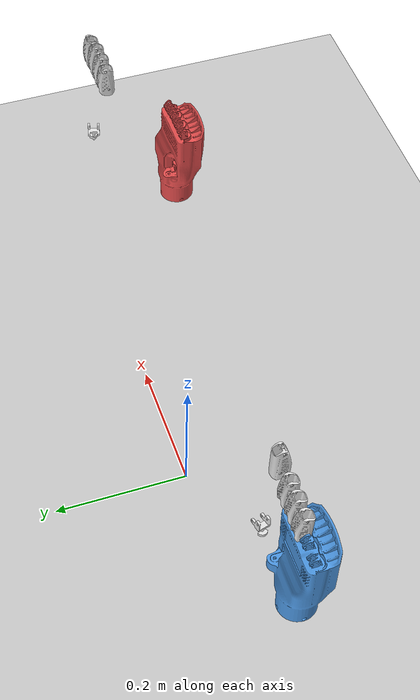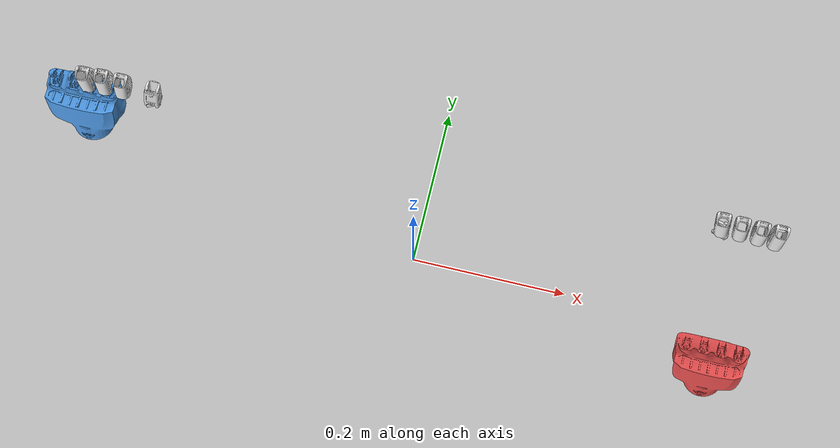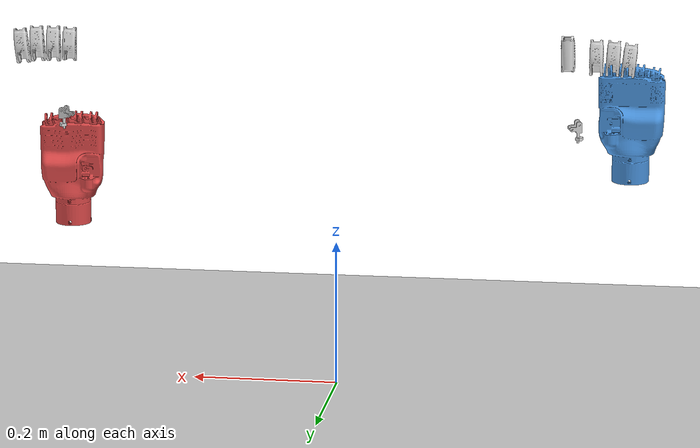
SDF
<?xml version="1.0" ?>
<sdf version="1.7">
  <world name="ftp_hands_simple">
    <!-- Physics settings -->
    <physics name="default" type="ode">
      <max_step_size>0.001</max_step_size>
      <real_time_factor>1.0</real_time_factor>
      <real_time_update_rate>1000</real_time_update_rate>
    </physics>

    <!-- Light sources -->
    <light type="directional" name="sun">
      <cast_shadows>true</cast_shadows>
      <pose>0 0 10 0 0 0</pose>
      <diffuse>0.8 0.8 0.8 1</diffuse>
      <specular>0.2 0.2 0.2 1</specular>
      <attenuation>
        <range>1000</range>
        <constant>0.9</constant>
        <linear>0.01</linear>
        <quadratic>0.001</quadratic>
      </attenuation>
      <direction>-0.5 0.1 -0.9</direction>
    </light>

    <!-- Additional light for better visibility -->
    <light type="point" name="point_light">
      <pose>0 0 2 0 0 0</pose>
      <diffuse>0.5 0.5 0.5 1</diffuse>
      <specular>0.1 0.1 0.1 1</specular>
      <attenuation>
        <range>50</range>
        <constant>0.5</constant>
        <linear>0.01</linear>
        <quadratic>0.001</quadratic>
      </attenuation>
    </light>

    <!-- Ground plane -->
    <model name="ground_plane">
      <static>true</static>
      <link name="link">
        <collision name="collision">
          <geometry>
            <plane>
              <normal>0 0 1</normal>
              <size>100 100</size>
            </plane>
          </geometry>
        </collision>
        <visual name="visual">
          <geometry>
            <plane>
              <normal>0 0 1</normal>
              <size>100 100</size>
            </plane>
          </geometry>
          <material>
            <ambient>0.8 0.8 0.8 1</ambient>
            <diffuse>0.8 0.8 0.8 1</diffuse>
            <specular>0.8 0.8 0.8 1</specular>
          </material>
        </visual>
      </link>
    </model>

    <!-- FTP Left Hand (Simplified) -->
    <model name="ftp_left_hand">
      <pose>-0.4 0 0.3 0 0 0</pose>
      <static>true</static>

      <!-- Left Base Link -->
      <link name="left_base">
        <pose>0 0 0 0 0 0</pose>
        <inertial>
          <mass>0.5</mass>
          <inertia>
            <ixx>0.001</ixx>
            <ixy>0</ixy>
            <ixz>0</ixz>
            <iyy>0.001</iyy>
            <iyz>0</iyz>
            <izz>0.001</izz>
          </inertia>
        </inertial>
        <visual name="visual">
          <geometry>
            <mesh>
              <uri>file://meshes/left_base_link.STL</uri>
              <scale>1 1 1</scale>
            </mesh>
          </geometry>
          <material>
            <ambient>0.2 0.5 0.8 1</ambient>
            <diffuse>0.3 0.6 0.9 1</diffuse>
            <specular>0.1 0.1 0.1 1</specular>
          </material>
        </visual>
        <collision name="collision">
          <geometry>
            <mesh>
              <uri>file://meshes/left_base_link.STL</uri>
            </mesh>
          </geometry>
        </collision>
      </link>

      <!-- Left Thumb -->
      <link name="left_thumb">
        <pose>0.07 0.02 0.07 0 0 0</pose>
        <inertial>
          <mass>0.01</mass>
          <inertia>
            <ixx>0.0001</ixx>
            <ixy>0</ixy>
            <ixz>0</ixz>
            <iyy>0.0001</iyy>
            <iyz>0</iyz>
            <izz>0.0001</izz>
          </inertia>
        </inertial>
        <visual name="visual">
          <geometry>
            <mesh>
              <uri>file://meshes/left_thumb_1.STL</uri>
            </mesh>
          </geometry>
          <material>
            <ambient>0.8 0.8 0.8 1</ambient>
            <diffuse>0.9 0.9 0.9 1</diffuse>
          </material>
        </visual>
        <collision name="collision">
          <geometry>
            <mesh>
              <uri>file://meshes/left_thumb_1.STL</uri>
            </mesh>
          </geometry>
        </collision>
      </link>

      <!-- Left Index Finger -->
      <link name="left_index">
        <pose>0.08 0 0.16 1.6 0 1.57</pose>
        <inertial>
          <mass>0.02</mass>
          <inertia>
            <ixx>0.0001</ixx>
            <ixy>0</ixy>
            <ixz>0</ixz>
            <iyy>0.0001</iyy>
            <iyz>0</iyz>
            <izz>0.0001</izz>
          </inertia>
        </inertial>
        <visual name="visual">
          <geometry>
            <mesh>
              <uri>file://meshes/left_index_1.STL</uri>
            </mesh>
          </geometry>
          <material>
            <ambient>0.8 0.8 0.8 1</ambient>
            <diffuse>0.9 0.9 0.9 1</diffuse>
          </material>
        </visual>
        <collision name="collision">
          <geometry>
            <mesh>
              <uri>file://meshes/left_index_1.STL</uri>
            </mesh>
          </geometry>
        </collision>
      </link>

      <!-- Left Middle Finger -->
      <link name="left_middle">
        <pose>0.056 0 0.157 1.57 0 1.57</pose>
        <inertial>
          <mass>0.02</mass>
          <inertia>
            <ixx>0.0001</ixx>
            <ixy>0</ixy>
            <ixz>0</ixz>
            <iyy>0.0001</iyy>
            <iyz>0</iyz>
            <izz>0.0001</izz>
          </inertia>
        </inertial>
        <visual name="visual">
          <geometry>
            <mesh>
              <uri>file://meshes/left_middle_1.STL</uri>
            </mesh>
          </geometry>
          <material>
            <ambient>0.8 0.8 0.8 1</ambient>
            <diffuse>0.9 0.9 0.9 1</diffuse>
          </material>
        </visual>
        <collision name="collision">
          <geometry>
            <mesh>
              <uri>file://meshes/left_middle_1.STL</uri>
            </mesh>
          </geometry>
        </collision>
      </link>

      <!-- Left Ring Finger -->
      <link name="left_ring">
        <pose>0.034 0 0.157 1.52 0 1.57</pose>
        <inertial>
          <mass>0.02</mass>
          <inertia>
            <ixx>0.0001</ixx>
            <ixy>0</ixy>
            <ixz>0</ixz>
            <iyy>0.0001</iyy>
            <iyz>0</iyz>
            <izz>0.0001</izz>
          </inertia>
        </inertial>
        <visual name="visual">
          <geometry>
            <mesh>
              <uri>file://meshes/left_ring_1.STL</uri>
            </mesh>
          </geometry>
          <material>
            <ambient>0.8 0.8 0.8 1</ambient>
            <diffuse>0.9 0.9 0.9 1</diffuse>
          </material>
        </visual>
        <collision name="collision">
          <geometry>
            <mesh>
              <uri>file://meshes/left_ring_1.STL</uri>
            </mesh>
          </geometry>
        </collision>
      </link>

      <!-- Left Little Finger -->
      <link name="left_little">
        <pose>0.013 0 0.154 1.47 0 1.57</pose>
        <inertial>
          <mass>0.02</mass>
          <inertia>
            <ixx>0.0001</ixx>
            <ixy>0</ixy>
            <ixz>0</ixz>
            <iyy>0.0001</iyy>
            <iyz>0</iyz>
            <izz>0.0001</izz>
          </inertia>
        </inertial>
        <visual name="visual">
          <geometry>
            <mesh>
              <uri>file://meshes/left_little_1.STL</uri>
            </mesh>
          </geometry>
          <material>
            <ambient>0.8 0.8 0.8 1</ambient>
            <diffuse>0.9 0.9 0.9 1</diffuse>
          </material>
        </visual>
        <collision name="collision">
          <geometry>
            <mesh>
              <uri>file://meshes/left_little_1.STL</uri>
            </mesh>
          </geometry>
        </collision>
      </link>
    </model>

    <!-- FTP Right Hand (Simplified) -->
    <model name="ftp_right_hand">
      <pose>0.4 0 0.3 0 0 0</pose>
      <static>true</static>

      <!-- Right Base Link -->
      <link name="right_base">
        <pose>0 0 0 0 0 0</pose>
        <inertial>
          <mass>0.5</mass>
          <inertia>
            <ixx>0.001</ixx>
            <ixy>0</ixy>
            <ixz>0</ixz>
            <iyy>0.001</iyy>
            <iyz>0</iyz>
            <izz>0.001</izz>
          </inertia>
        </inertial>
        <visual name="visual">
          <geometry>
            <mesh>
              <uri>file://meshes/right_base_link.STL</uri>
              <scale>1 1 1</scale>
            </mesh>
          </geometry>
          <material>
            <ambient>0.8 0.2 0.2 1</ambient>
            <diffuse>0.9 0.3 0.3 1</diffuse>
            <specular>0.1 0.1 0.1 1</specular>
          </material>
        </visual>
        <collision name="collision">
          <geometry>
            <mesh>
              <uri>file://meshes/right_base_link.STL</uri>
            </mesh>
          </geometry>
        </collision>
      </link>

      <!-- Right Thumb -->
      <link name="right_thumb">
        <pose>-0.027 0.021 0.069 0 0 0</pose>
        <inertial>
          <mass>0.01</mass>
          <inertia>
            <ixx>0.0001</ixx>
            <ixy>0</ixy>
            <ixz>0</ixz>
            <iyy>0.0001</iyy>
            <iyz>0</iyz>
            <izz>0.0001</izz>
          </inertia>
        </inertial>
        <visual name="visual">
          <geometry>
            <mesh>
              <uri>file://meshes/right_thumb_1.STL</uri>
            </mesh>
          </geometry>
          <material>
            <ambient>0.8 0.8 0.8 1</ambient>
            <diffuse>0.9 0.9 0.9 1</diffuse>
          </material>
        </visual>
        <collision name="collision">
          <geometry>
            <mesh>
              <uri>file://meshes/right_thumb_1.STL</uri>
            </mesh>
          </geometry>
        </collision>
      </link>

      <!-- Right Index Finger -->
      <link name="right_index">
        <pose>-0.039 0 0.156 1.6 0 -1.57</pose>
        <inertial>
          <mass>0.02</mass>
          <inertia>
            <ixx>0.0001</ixx>
            <ixy>0</ixy>
            <ixz>0</ixz>
            <iyy>0.0001</iyy>
            <iyz>0</iyz>
            <izz>0.0001</izz>
          </inertia>
        </inertial>
        <visual name="visual">
          <geometry>
            <mesh>
              <uri>file://meshes/right_index_1.STL</uri>
            </mesh>
          </geometry>
          <material>
            <ambient>0.8 0.8 0.8 1</ambient>
            <diffuse>0.9 0.9 0.9 1</diffuse>
          </material>
        </visual>
        <collision name="collision">
          <geometry>
            <mesh>
              <uri>file://meshes/right_index_1.STL</uri>
            </mesh>
          </geometry>
        </collision>
      </link>

      <!-- Right Middle Finger -->
      <link name="right_middle">
        <pose>-0.017 0 0.157 1.57 0 -1.57</pose>
        <inertial>
          <mass>0.02</mass>
          <inertia>
            <ixx>0.0001</ixx>
            <ixy>0</ixy>
            <ixz>0</ixz>
            <iyy>0.0001</iyy>
            <iyz>0</iyz>
            <izz>0.0001</izz>
          </inertia>
        </inertial>
        <visual name="visual">
          <geometry>
            <mesh>
              <uri>file://meshes/right_middle_1.STL</uri>
            </mesh>
          </geometry>
          <material>
            <ambient>0.8 0.8 0.8 1</ambient>
            <diffuse>0.9 0.9 0.9 1</diffuse>
          </material>
        </visual>
        <collision name="collision">
          <geometry>
            <mesh>
              <uri>file://meshes/right_middle_1.STL</uri>
            </mesh>
          </geometry>
        </collision>
      </link>

      <!-- Right Ring Finger -->
      <link name="right_ring">
        <pose>0.005 0 0.157 1.52 0 -1.57</pose>
        <inertial>
          <mass>0.02</mass>
          <inertia>
            <ixx>0.0001</ixx>
            <ixy>0</ixy>
            <ixz>0</ixz>
            <iyy>0.0001</iyy>
            <iyz>0</iyz>
            <izz>0.0001</izz>
          </inertia>
        </inertial>
        <visual name="visual">
          <geometry>
            <mesh>
              <uri>file://meshes/right_ring_1.STL</uri>
            </mesh>
          </geometry>
          <material>
            <ambient>0.8 0.8 0.8 1</ambient>
            <diffuse>0.9 0.9 0.9 1</diffuse>
          </material>
        </visual>
        <collision name="collision">
          <geometry>
            <mesh>
              <uri>file://meshes/right_ring_1.STL</uri>
            </mesh>
          </geometry>
        </collision>
      </link>

      <!-- Right Little Finger -->
      <link name="right_little">
        <pose>0.026 0 0.154 1.47 0 -1.57</pose>
        <inertial>
          <mass>0.02</mass>
          <inertia>
            <ixx>0.0001</ixx>
            <ixy>0</ixy>
            <ixz>0</ixz>
            <iyy>0.0001</iyy>
            <iyz>0</iyz>
            <izz>0.0001</izz>
          </inertia>
        </inertial>
        <visual name="visual">
          <geometry>
            <mesh>
              <uri>file://meshes/right_little_1.STL</uri>
            </mesh>
          </geometry>
          <material>
            <ambient>0.8 0.8 0.8 1</ambient>
            <diffuse>0.9 0.9 0.9 1</diffuse>
          </material>
        </visual>
        <collision name="collision">
          <geometry>
            <mesh>
              <uri>file://meshes/right_little_1.STL</uri>
            </mesh>
          </geometry>
        </collision>
      </link>
    </model>

    <!-- GUI settings -->
    <gui fullscreen='0'>
      <camera name='user_camera'>
        <pose>0 -1.5 1 0 0.3 1.57</pose>
        <view_controller>orbit</view_controller>
        <projection_type>perspective</projection_type>
      </camera>
    </gui>
  </world>
</sdf>
